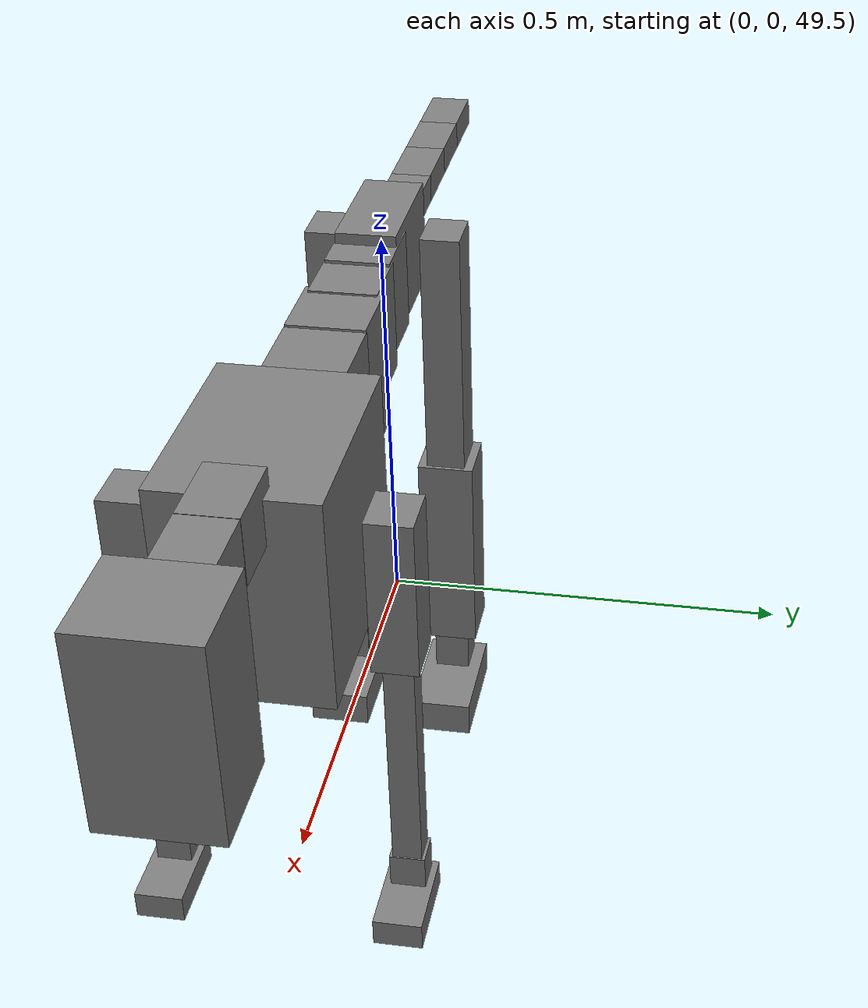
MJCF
<mujoco model="dog">

    <default>
        <joint armature="0.02" stiffness="1" damping="0.2" limited="true"/>
        <geom condim="3" friction="1 0.05 0.05" margin="0.01"/>
        <motor ctrllimited="true" ctrlrange="-1.0 1.0" forcelimited="true" gear="50"/>
    </default>

    <compiler inertiafromgeom="true" angle="radian"/>

    <option timestep="0.016" iterations="50" tolerance="1e-10" solver="Newton" jacobian="dense" cone="pyramidal"/>

    <size nconmax="20000" njmax="60000" nstack="5000000"/>
    <visual>
        <map force="0.1" zfar="30"/>
        <rgba haze="0.15 0.25 0.35 1"/>
        <quality shadowsize="2048"/>
        <global offwidth="800" offheight="800"/>
    </visual>

    <asset>
        <texture type="skybox" builtin="gradient" rgb1="0.3 0.5 0.7" rgb2="0 0 0" width="512" height="512"/>
        <texture name="texplane" type="2d" builtin="checker" rgb1=".2 .3 .4" rgb2=".1 0.15 0.2" width="512" height="512"
                 mark="cross" markrgb=".8 .8 .8"/>
        <texture name="texgeom" type="cube" builtin="flat" mark="cross" width="127" height="1278" rgb1="0.8 0.6 0.4"
                 rgb2="0.8 0.6 0.4" markrgb="1 1 1" random="0.01"/>

        <material name="matplane" reflectance="0.3" texture="texplane" texrepeat="1 1" texuniform="true"/>
        <material name="matgeom" texture="texgeom" texuniform="true" rgba="0.8 0.6 .4 1"/>
    </asset>

    <worldbody>
        <geom name="floor" pos="0 0 0" size="0 0 .25" type="plane" material="matplane" condim="3"/>

        <light directional="false" diffuse=".2 .2 .2" specular="0 0 0" pos="0 0 5" dir="0 0 -1" castshadow="false"/>
        <light mode="targetbodycom" target="torso" directional="false" diffuse=".8 .8 .8" specular="0.3 0.3 0.3"
               pos="0 0 4.0" dir="0 0 -1"/>

        <body name="root" pos="0 0 50">
            <freejoint name="root_1"/>
            <geom type="box" pos="0 0 -0.02" size="0.0774  0.0358  0.063" density="2030"/>

            <body name="spine1" pos="0.054 0 0">
                <joint name="spine1_y" axis="0 1 0" range="0 0.7" limited="true"/>
                <geom type="box" pos="0.02375 0 -0.03" size="0.04375  0.0375  0.05985" density="2030"/>

                <body name="spine2" pos="0.0612 0 0">
                    <joint name="spine2_y" axis="0 1 0" range="-0.15 0.15" limited="true"/>
                    <geom type="box" pos="0.03555  0  -0.04" size="0.04055  0.039  0.06615" density="2030"/>

                    <body name="spine3" pos="0.0730 0 0">
                        <joint name="spine3_y" axis="0 1 0" range="-0.15 0.15" limited="true"/>
                        <geom type="box" pos="0.03555  0  -0.057" size="0.04555  0.0445  0.081" density="2030"/>

                        <body name="spine4" pos="0.0780 0 0">
                            <joint name="spine4_y" axis="0 1 0" range="-0.15 0.15" limited="true"/>
                            <geom type="box" pos="0.05265  0  -0.07" size="0.05265  0.045  0.09135" density="2030"/>

                            <body name="torso" pos="0.1082 0 0">
                                <joint name="torso_y" axis="0 1 0" range="-0.15 0.15" limited="true"/>
                                <geom type="box" pos="0.11925  0  -0.085" size="0.11925  0.085  0.11745"
                                      density="2030"/>

                                <body name="neck1" pos="0.2160  0   0.0180">
                                    <joint name="neck1_y" axis="0 1 0" range="-1.2  -1" limited="true"/>
                                    <geom type="box" pos="0.0423  0  0" size="0.0423  0.03  0.036" density="2325"/>

                                    <body name="neck2" pos="0.0853  0  0">
                                        <joint name="neck2_y" axis="0 1 0" range="0.1  0" limited="true"/>
                                        <geom type="box" pos="0.0423  0  0" size="0.0423  0.03  0.036" density="2325"/>

                                        <body name="head" pos="0.0853  0  0">
                                            <joint name="head_y" axis="0 1 0" range="-0.3  -0.2" limited="true"/>
                                            <geom type="box" pos="0.0531  0  -0.055" size="0.0531  0.06  0.1044"
                                                  density="4030"/>

                                        </body>
                                    </body>
                                </body>

                                <body name="front_shoulder" pos="0.156  0   -0.0480">
                                    <joint name="front_shoulder_y" axis="0 1 0" range="-1 1.5" limited="true"/>
                                    <geom type="box" pos="0 0.13 -0.0612" size="0.0285  0.0244  0.0879" density="1158"/>
                                    <geom type="box" pos="0 -0.13 -0.0612" size="0.0285  0.0244  0.0879"
                                          density="1158"/>

                                    <body name="front_elbow" pos="0  0  -0.1225">
                                        <joint name="front_elbow_y" axis="0 1 0" range="-2 0" limited="true"/>
                                        <geom type="box" pos="0 0.13 -0.1494" size="0.0155  0.0158  0.1494"
                                              density="1081"/>
                                        <geom type="box" pos="0 -0.13 -0.1494" size="0.0155  0.0158  0.1494"
                                              density="1081"/>

                                        <body name="front_wrist" pos="0  0  -0.2988">
                                            <joint name="front_wrist_y" axis="0 1 0" range="-0.2 0" limited="true"/>
                                            <geom type="box" pos="0 0.13 -0.0204" size="0.0172  0.0191  0.0335"
                                                  density="1664"/>
                                            <geom type="box" pos="0 -0.13 -0.0204" size="0.0172  0.0191  0.0335"
                                                  density="1664"/>

                                            <body name="front_finger_end" pos="0  0  -0.0408">
                                                <joint name="front_finger_y" axis="0 1 0" range="-0.4 1"
                                                       limited="true"/>
                                                <geom type="box" pos="0.0263  0.13  -0.0005"
                                                      size="0.0482  0.0263  0.0155" density="1515"/>
                                                <geom type="box" pos="0.0263  -0.13  -0.0005"
                                                      size="0.0482  0.0263  0.0155" density="1515"/>

                                            </body>

                                        </body>
                                    </body>
                                </body>

                            </body>
                        </body>
                    </body>
                </body>
            </body>

            <body name="back_hip" pos="-0.03 0 -0.018">
                <joint name="back_hip_y" axis="0 1 0" range="-1.5 0.3" limited="true"/>
                <geom type="box" pos="0 0.07 -0.1550" size="0.0308  0.0242  0.1778" density="1154"/>
                <geom type="box" pos="0 -0.07 -0.1550" size="0.0308  0.0242  0.1778" density="1154"/>

                <body name="back_knee" pos="0  0  -0.3100">
                    <joint name="back_knee_y" axis="0 1 0" range="0 2.8" limited="true"/>
                    <geom type="box" pos="0 0.07 -0.1195" size="0.0357  0.0352  0.1350" density="1227"/>
                    <geom type="box" pos="0 -0.07 -0.1195" size="0.0357  0.0352  0.1350" density="1227"/>

                    <body name="back_ankle" pos="0  0  -0.2389">
                        <joint name="back_ankle_y" axis="0 1 0" range="-2.2 0" limited="true"/>
                        <geom type="box" pos="0 0.07 -0.0447" size="0.0223  0.0223  0.0560" density="1284"/>
                        <geom type="box" pos="0 -0.07 -0.0447" size="0.0223  0.0223  0.0560" density="1284"/>

                        <body name="back_toe_end" pos="0  0  -0.0895">
                            <joint name="back_toe_y" axis="0 1 0" range="-0.4 1" limited="true"/>
                            <geom type="box" pos="0.0382  0.07  -0.0074" size="0.0700  0.0382  0.0224" density="1515"/>
                            <geom type="box" pos="0.0382  -0.07  -0.0074" size="0.0700  0.0382  0.0224" density="1515"/>

                        </body>
                    </body>
                </body>
            </body>

            <body name="tail1" pos="-0.074 0 -0.006">
                <joint name="tail1_y" axis="0 1 0" range="-0.2 0.2" limited="true"/>
                <geom type="box" pos="-0.0536  0  0" size="0.045  0.025  0.0175" density="1587"/>

                <body name="tail2" pos="-0.09 0 0">
                    <joint name="tail2_y" axis="0 1 0" range="-0.2 0.2" limited="true"/>
                    <geom type="box" pos="-0.0536  0  0" size="0.045  0.025  0.0175" density="1587"/>

                    <body name="tail3" pos="-0.09 0 0">
                        <joint name="tail3_y" axis="0 1 0" range="-0.2 0.2" limited="true"/>
                        <geom type="box" pos="-0.0536  0  0" size="0.045  0.025  0.0175" density="1587"/>

                        <body name="tail4" pos="-0.09 0 0">
                            <joint name="tail4_y" axis="0 1 0" range="-0.2 0.2" limited="true"/>
                            <geom type="box" pos="-0.0536  0  0" size="0.045  0.025  0.0175" density="1587"/>

                        </body>
                    </body>
                </body>
            </body>
        </body>
    </worldbody>

    <actuator>
        <motor joint="spine1_y" forcerange="-150 150     "/>
        <motor joint="spine2_y" forcerange="-150 150     "/>
        <motor joint="spine3_y" forcerange="-150 150     "/>
        <motor joint="spine4_y" forcerange="-150 150     "/>
        <motor joint="torso_y" forcerange="-150 150     "/>
        <motor joint="neck1_y" forcerange="-100 100       "/>
        <motor joint="neck2_y" forcerange="-100 100       "/>
        <motor joint="head_y" forcerange="-150 150       "/>
        <motor joint="front_shoulder_y" forcerange="-128.56 134.05"/>
        <motor joint="front_elbow_y" forcerange="-103.48 111.54"/>
        <motor joint="front_wrist_y" forcerange="-102.18 50.48"/>
        <motor joint="front_finger_y" forcerange="-20.29 79.87"/>
        <motor joint="back_hip_y" forcerange="-298.82 223.49"/>
        <motor joint="back_knee_y" forcerange="-363.14 348.83"/>
        <motor joint="back_angle_y" forcerange="-92.40 164.32"/>
        <motor joint="back_toe_y" forcerange="-112.97 112.61"/>
        <motor joint="tail1_y" forcerange="-50 50     "/>
        <motor joint="tail2_y" forcerange="-50 50     "/>
        <motor joint="tail3_y" forcerange="-50 50     "/>
        <motor joint="tail4_y" forcerange="-50 50     "/>
    </actuator>
</mujoco>
